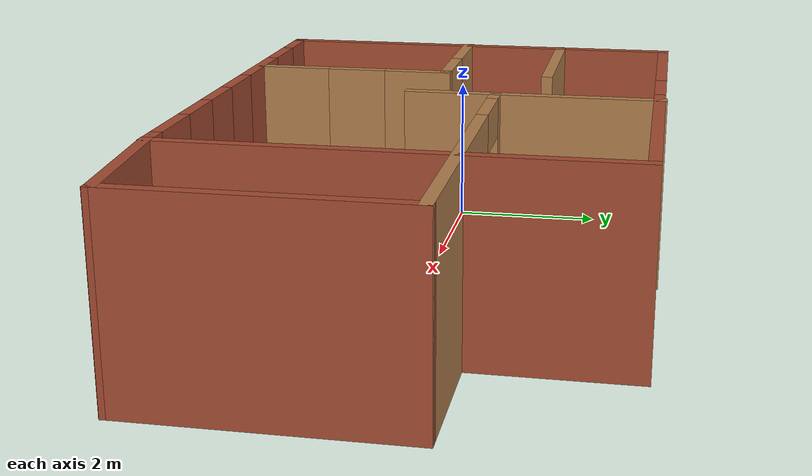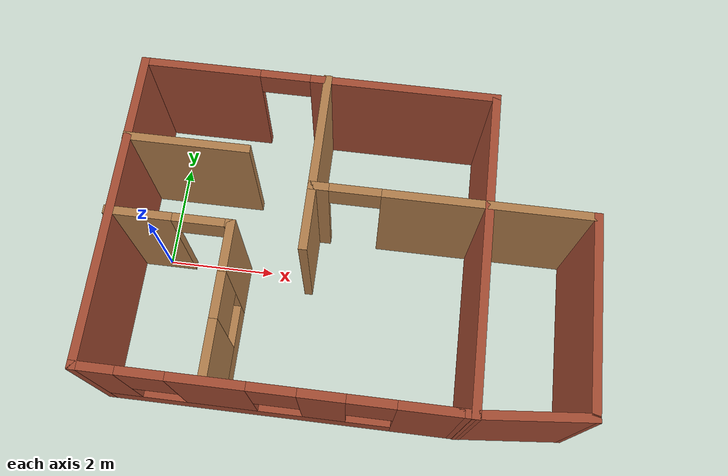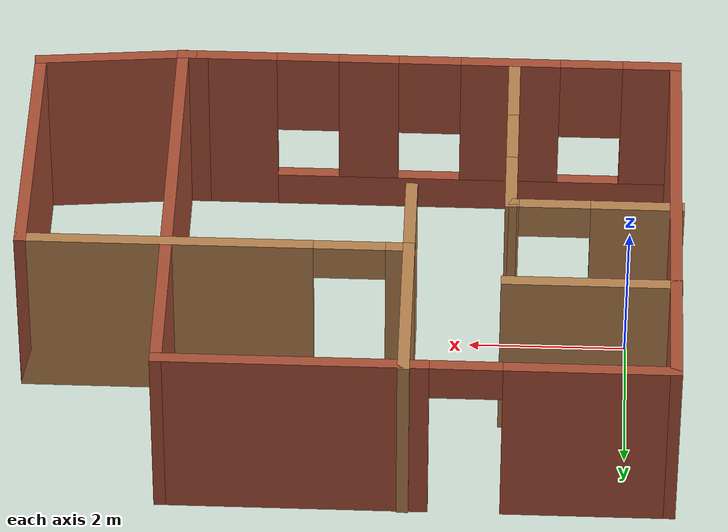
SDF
<?xml version='1.0'?>
<sdf version='1.7'>
  <model name='LAB'>
    <pose>3.51076 0.136542 0 0 -0 0</pose>
    <link name='Wall_0'>
      <pose>-1.02569 -2.80704 0 0 -0 3.14159</pose>
      <visual name='Wall_0_Visual_0'>
        <pose>-2.60515 0 1.25 0 -0 0</pose>
        <geometry>
          <box>
            <size>1.03971 0.15 2.5</size>
          </box>
        </geometry>
        <material>
          <script>
            <uri>file://media/materials/scripts/gazebo.material</uri>
            <name>Gazebo/Bricks</name>
          </script>
          <ambient>1 1 1 1</ambient>
        </material>
        <meta>
          <layer>0</layer>
        </meta>
      </visual>
      <collision name='Wall_0_Collision_0'>
        <geometry>
          <box>
            <size>1.03971 0.15 2.5</size>
          </box>
        </geometry>
        <pose>-2.60515 0 1.25 0 -0 0</pose>
      </collision>
      <visual name='Wall_0_Visual_1'>
        <pose>0.519853 0 0.25 0 -0 0</pose>
        <geometry>
          <box>
            <size>5.21029 0.15 0.5</size>
          </box>
        </geometry>
        <material>
          <script>
            <uri>file://media/materials/scripts/gazebo.material</uri>
            <name>Gazebo/Bricks</name>
          </script>
          <ambient>1 1 1 1</ambient>
        </material>
        <meta>
          <layer>0</layer>
        </meta>
      </visual>
      <collision name='Wall_0_Collision_1'>
        <geometry>
          <box>
            <size>5.21029 0.15 0.5</size>
          </box>
        </geometry>
        <pose>0.519853 0 0.25 0 -0 0</pose>
      </collision>
      <visual name='Wall_0_Visual_2'>
        <pose>-0.898854 0 1.5 0 -0 0</pose>
        <geometry>
          <box>
            <size>0.772881 0.15 2</size>
          </box>
        </geometry>
        <material>
          <script>
            <uri>file://media/materials/scripts/gazebo.material</uri>
            <name>Gazebo/Bricks</name>
          </script>
          <ambient>1 1 1 1</ambient>
        </material>
        <meta>
          <layer>0</layer>
        </meta>
      </visual>
      <collision name='Wall_0_Collision_2'>
        <geometry>
          <box>
            <size>0.772881 0.15 2</size>
          </box>
        </geometry>
        <pose>-0.898854 0 1.5 0 -0 0</pose>
      </collision>
      <visual name='Wall_0_Visual_3'>
        <pose>0.928464 0 1.5 0 -0 0</pose>
        <geometry>
          <box>
            <size>1.28175 0.15 2</size>
          </box>
        </geometry>
        <material>
          <script>
            <uri>file://media/materials/scripts/gazebo.material</uri>
            <name>Gazebo/Bricks</name>
          </script>
          <ambient>1 1 1 1</ambient>
        </material>
        <meta>
          <layer>0</layer>
        </meta>
      </visual>
      <collision name='Wall_0_Collision_3'>
        <geometry>
          <box>
            <size>1.28175 0.15 2</size>
          </box>
        </geometry>
        <pose>0.928464 0 1.5 0 -0 0</pose>
      </collision>
      <visual name='Wall_0_Visual_4'>
        <pose>2.74717 0 1.5 0 -0 0</pose>
        <geometry>
          <box>
            <size>0.755658 0.15 2</size>
          </box>
        </geometry>
        <material>
          <script>
            <uri>file://media/materials/scripts/gazebo.material</uri>
            <name>Gazebo/Bricks</name>
          </script>
          <ambient>1 1 1 1</ambient>
        </material>
        <meta>
          <layer>0</layer>
        </meta>
      </visual>
      <collision name='Wall_0_Collision_4'>
        <geometry>
          <box>
            <size>0.755658 0.15 2</size>
          </box>
        </geometry>
        <pose>2.74717 0 1.5 0 -0 0</pose>
      </collision>
      <visual name='Wall_0_Visual_5'>
        <pose>-1.68529 0 1.9 0 -0 0</pose>
        <geometry>
          <box>
            <size>0.8 0.15 1.2</size>
          </box>
        </geometry>
        <material>
          <script>
            <uri>file://media/materials/scripts/gazebo.material</uri>
            <name>Gazebo/Bricks</name>
          </script>
          <ambient>1 1 1 1</ambient>
        </material>
        <meta>
          <layer>0</layer>
        </meta>
      </visual>
      <collision name='Wall_0_Collision_5'>
        <geometry>
          <box>
            <size>0.8 0.15 1.2</size>
          </box>
        </geometry>
        <pose>-1.68529 0 1.9 0 -0 0</pose>
      </collision>
      <visual name='Wall_0_Visual_6'>
        <pose>-0.112413 0 1.9 0 -0 0</pose>
        <geometry>
          <box>
            <size>0.8 0.15 1.2</size>
          </box>
        </geometry>
        <material>
          <script>
            <uri>file://media/materials/scripts/gazebo.material</uri>
            <name>Gazebo/Bricks</name>
          </script>
          <ambient>1 1 1 1</ambient>
        </material>
        <meta>
          <layer>0</layer>
        </meta>
      </visual>
      <collision name='Wall_0_Collision_6'>
        <geometry>
          <box>
            <size>0.8 0.15 1.2</size>
          </box>
        </geometry>
        <pose>-0.112413 0 1.9 0 -0 0</pose>
      </collision>
      <visual name='Wall_0_Visual_7'>
        <pose>1.96934 0 1.9 0 -0 0</pose>
        <geometry>
          <box>
            <size>0.8 0.15 1.2</size>
          </box>
        </geometry>
        <material>
          <script>
            <uri>file://media/materials/scripts/gazebo.material</uri>
            <name>Gazebo/Bricks</name>
          </script>
          <ambient>1 1 1 1</ambient>
        </material>
        <meta>
          <layer>0</layer>
        </meta>
      </visual>
      <collision name='Wall_0_Collision_7'>
        <geometry>
          <box>
            <size>0.8 0.15 1.2</size>
          </box>
        </geometry>
        <pose>1.96934 0 1.9 0 -0 0</pose>
      </collision>
    </link>
    <link name='Wall_1'>
      <collision name='Wall_1_Collision'>
        <geometry>
          <box>
            <size>5.75 0.15 2.5</size>
          </box>
        </geometry>
        <pose>0 0 1.25 0 -0 0</pose>
      </collision>
      <visual name='Wall_1_Visual'>
        <pose>0 0 1.25 0 -0 0</pose>
        <geometry>
          <box>
            <size>5.75 0.15 2.5</size>
          </box>
        </geometry>
        <material>
          <script>
            <uri>file://media/materials/scripts/gazebo.material</uri>
            <name>Gazebo/Bricks</name>
          </script>
          <ambient>1 1 1 1</ambient>
        </material>
        <meta>
          <layer>0</layer>
        </meta>
      </visual>
      <pose>-4.07569 -0.007038 0 0 -0 1.5708</pose>
    </link>
    <link name='Wall_11'>
      <collision name='Wall_11_Collision'>
        <geometry>
          <box>
            <size>2.25 0.15 2.5</size>
          </box>
        </geometry>
        <pose>0 0 1.25 0 -0 0</pose>
      </collision>
      <visual name='Wall_11_Visual'>
        <pose>0 0 1.25 0 -0 0</pose>
        <geometry>
          <box>
            <size>2.25 0.15 2.5</size>
          </box>
        </geometry>
        <material>
          <script>
            <uri>file://media/materials/scripts/gazebo.material</uri>
            <name>Gazebo/Wood</name>
          </script>
          <ambient>1 1 1 1</ambient>
        </material>
        <meta>
          <layer>0</layer>
        </meta>
      </visual>
      <pose>-0.751362 1.7637 0 0 -0 -1.5708</pose>
    </link>
    <link name='Wall_12'>
      <pose>1.67364 0.7137 0 0 -0 0</pose>
      <visual name='Wall_12_Visual_0'>
        <pose>-2.31741 0 1.25 0 -0 0</pose>
        <geometry>
          <box>
            <size>0.36518 0.15 2.5</size>
          </box>
        </geometry>
        <material>
          <script>
            <uri>file://media/materials/scripts/gazebo.material</uri>
            <name>Gazebo/Wood</name>
          </script>
          <ambient>1 1 1 1</ambient>
        </material>
        <meta>
          <layer>0</layer>
        </meta>
      </visual>
      <collision name='Wall_12_Collision_0'>
        <geometry>
          <box>
            <size>0.36518 0.15 2.5</size>
          </box>
        </geometry>
        <pose>-2.31741 0 1.25 0 -0 0</pose>
      </collision>
      <visual name='Wall_12_Visual_1'>
        <pose>0.63259 0 1.25 0 -0 0</pose>
        <geometry>
          <box>
            <size>3.73482 0.15 2.5</size>
          </box>
        </geometry>
        <material>
          <script>
            <uri>file://media/materials/scripts/gazebo.material</uri>
            <name>Gazebo/Wood</name>
          </script>
          <ambient>1 1 1 1</ambient>
        </material>
        <meta>
          <layer>0</layer>
        </meta>
      </visual>
      <collision name='Wall_12_Collision_1'>
        <geometry>
          <box>
            <size>3.73482 0.15 2.5</size>
          </box>
        </geometry>
        <pose>0.63259 0 1.25 0 -0 0</pose>
      </collision>
      <visual name='Wall_12_Visual_2'>
        <pose>-1.68482 0 2.25 0 -0 0</pose>
        <geometry>
          <box>
            <size>0.9 0.15 0.5</size>
          </box>
        </geometry>
        <material>
          <script>
            <uri>file://media/materials/scripts/gazebo.material</uri>
            <name>Gazebo/Wood</name>
          </script>
          <ambient>1 1 1 1</ambient>
        </material>
        <meta>
          <layer>0</layer>
        </meta>
      </visual>
      <collision name='Wall_12_Collision_2'>
        <geometry>
          <box>
            <size>0.9 0.15 0.5</size>
          </box>
        </geometry>
        <pose>-1.68482 0 2.25 0 -0 0</pose>
      </collision>
    </link>
    <link name='Wall_13'>
      <collision name='Wall_13_Collision'>
        <geometry>
          <box>
            <size>3.5 0.15 2.5</size>
          </box>
        </geometry>
        <pose>0 0 1.25 0 -0 0</pose>
      </collision>
      <visual name='Wall_13_Visual'>
        <pose>0 0 1.25 0 -0 0</pose>
        <geometry>
          <box>
            <size>3.5 0.15 2.5</size>
          </box>
        </geometry>
        <material>
          <script>
            <uri>file://media/materials/scripts/gazebo.material</uri>
            <name>Gazebo/Bricks</name>
          </script>
          <ambient>1 1 1 1</ambient>
        </material>
        <meta>
          <layer>0</layer>
        </meta>
      </visual>
      <pose>4.09864 -0.9613 0 0 -0 -1.5708</pose>
    </link>
    <link name='Wall_14'>
      <collision name='Wall_14_Collision'>
        <geometry>
          <box>
            <size>1.9823 0.15 2.5</size>
          </box>
        </geometry>
        <pose>0 0 1.25 0 -0 0</pose>
      </collision>
      <visual name='Wall_14_Visual'>
        <pose>0 0 1.25 0 -0 0</pose>
        <geometry>
          <box>
            <size>1.9823 0.15 2.5</size>
          </box>
        </geometry>
        <material>
          <script>
            <uri>file://media/materials/scripts/gazebo.material</uri>
            <name>Gazebo/Bricks</name>
          </script>
          <ambient>1 1 1 1</ambient>
        </material>
        <meta>
          <layer>0</layer>
        </meta>
      </visual>
      <pose>3.18647 -2.72167 0 0 -0 -3.04827</pose>
    </link>
    <link name='Wall_16'>
      <collision name='Wall_16_Collision'>
        <geometry>
          <box>
            <size>1.25 0.15 2.5</size>
          </box>
        </geometry>
        <pose>0 0 1.25 0 -0 0</pose>
      </collision>
      <visual name='Wall_16_Visual'>
        <pose>0 0 1.25 0 -0 0</pose>
        <geometry>
          <box>
            <size>1.25 0.15 2.5</size>
          </box>
        </geometry>
        <material>
          <script>
            <uri>file://media/materials/scripts/gazebo.material</uri>
            <name>Gazebo/Wood</name>
          </script>
          <ambient>1 1 1 1</ambient>
        </material>
        <meta>
          <layer>0</layer>
        </meta>
      </visual>
      <pose>-0.751362 0.1637 0 0 -0 -1.5708</pose>
    </link>
    <link name='Wall_2'>
      <pose>-0.900689 2.79296 0 0 -0 0</pose>
      <visual name='Wall_2_Visual_0'>
        <pose>-2.15699 0 1.25 0 -0 0</pose>
        <geometry>
          <box>
            <size>2.18602 0.15 2.5</size>
          </box>
        </geometry>
        <material>
          <script>
            <uri>file://media/materials/scripts/gazebo.material</uri>
            <name>Gazebo/Bricks</name>
          </script>
          <ambient>1 1 1 1</ambient>
        </material>
        <meta>
          <layer>0</layer>
        </meta>
      </visual>
      <collision name='Wall_2_Collision_0'>
        <geometry>
          <box>
            <size>2.18602 0.15 2.5</size>
          </box>
        </geometry>
        <pose>-2.15699 0 1.25 0 -0 0</pose>
      </collision>
      <visual name='Wall_2_Visual_1'>
        <pose>1.54301 0 1.25 0 -0 0</pose>
        <geometry>
          <box>
            <size>3.41398 0.15 2.5</size>
          </box>
        </geometry>
        <material>
          <script>
            <uri>file://media/materials/scripts/gazebo.material</uri>
            <name>Gazebo/Bricks</name>
          </script>
          <ambient>1 1 1 1</ambient>
        </material>
        <meta>
          <layer>0</layer>
        </meta>
      </visual>
      <collision name='Wall_2_Collision_1'>
        <geometry>
          <box>
            <size>3.41398 0.15 2.5</size>
          </box>
        </geometry>
        <pose>1.54301 0 1.25 0 -0 0</pose>
      </collision>
      <visual name='Wall_2_Visual_2'>
        <pose>-0.613983 0 2.25 0 -0 0</pose>
        <geometry>
          <box>
            <size>0.9 0.15 0.5</size>
          </box>
        </geometry>
        <material>
          <script>
            <uri>file://media/materials/scripts/gazebo.material</uri>
            <name>Gazebo/Bricks</name>
          </script>
          <ambient>1 1 1 1</ambient>
        </material>
        <meta>
          <layer>0</layer>
        </meta>
      </visual>
      <collision name='Wall_2_Collision_2'>
        <geometry>
          <box>
            <size>0.9 0.15 0.5</size>
          </box>
        </geometry>
        <pose>-0.613983 0 2.25 0 -0 0</pose>
      </collision>
    </link>
    <link name='Wall_3'>
      <collision name='Wall_3_Collision'>
        <geometry>
          <box>
            <size>5.75 0.15 2.5</size>
          </box>
        </geometry>
        <pose>0 0 1.25 0 -0 0</pose>
      </collision>
      <visual name='Wall_3_Visual'>
        <pose>0 0 1.25 0 -0 0</pose>
        <geometry>
          <box>
            <size>5.75 0.15 2.5</size>
          </box>
        </geometry>
        <material>
          <script>
            <uri>file://media/materials/scripts/gazebo.material</uri>
            <name>Gazebo/Bricks</name>
          </script>
          <ambient>1 1 1 1</ambient>
        </material>
        <meta>
          <layer>0</layer>
        </meta>
      </visual>
      <pose>2.27431 -0.007038 0 0 -0 -1.5708</pose>
    </link>
    <link name='Wall_4'>
      <collision name='Wall_4_Collision'>
        <geometry>
          <box>
            <size>0.4 0.15 2.5</size>
          </box>
        </geometry>
        <pose>0 0 1.25 0 -0 0</pose>
      </collision>
      <visual name='Wall_4_Visual'>
        <pose>0 0 1.25 0 -0 0</pose>
        <geometry>
          <box>
            <size>0.4 0.15 2.5</size>
          </box>
        </geometry>
        <material>
          <script>
            <uri>file://media/materials/scripts/gazebo.material</uri>
            <name>Gazebo/Bricks</name>
          </script>
          <ambient>1 1 1 1</ambient>
        </material>
        <meta>
          <layer>0</layer>
        </meta>
      </visual>
      <pose>2.14931 -2.80704 0 0 -0 3.14159</pose>
    </link>
    <link name='Wall_6'>
      <pose>-3.0553 -0.147018 0 0 -0 0</pose>
      <visual name='Wall_6_Visual_0'>
        <pose>-0.537625 0 1.25 0 -0 0</pose>
        <geometry>
          <box>
            <size>1.17475 0.15 2.5</size>
          </box>
        </geometry>
        <material>
          <script>
            <uri>file://media/materials/scripts/gazebo.material</uri>
            <name>Gazebo/Wood</name>
          </script>
          <ambient>1 1 1 1</ambient>
        </material>
        <meta>
          <layer>0</layer>
        </meta>
      </visual>
      <collision name='Wall_6_Collision_0'>
        <geometry>
          <box>
            <size>1.17475 0.15 2.5</size>
          </box>
        </geometry>
        <pose>-0.537625 0 1.25 0 -0 0</pose>
      </collision>
      <visual name='Wall_6_Visual_1'>
        <pose>1.03737 0 1.25 0 -0 0</pose>
        <geometry>
          <box>
            <size>0.175249 0.15 2.5</size>
          </box>
        </geometry>
        <material>
          <script>
            <uri>file://media/materials/scripts/gazebo.material</uri>
            <name>Gazebo/Wood</name>
          </script>
          <ambient>1 1 1 1</ambient>
        </material>
        <meta>
          <layer>0</layer>
        </meta>
      </visual>
      <collision name='Wall_6_Collision_1'>
        <geometry>
          <box>
            <size>0.175249 0.15 2.5</size>
          </box>
        </geometry>
        <pose>1.03737 0 1.25 0 -0 0</pose>
      </collision>
      <visual name='Wall_6_Visual_2'>
        <pose>0.499751 0 2.25 0 -0 0</pose>
        <geometry>
          <box>
            <size>0.9 0.15 0.5</size>
          </box>
        </geometry>
        <material>
          <script>
            <uri>file://media/materials/scripts/gazebo.material</uri>
            <name>Gazebo/Wood</name>
          </script>
          <ambient>1 1 1 1</ambient>
        </material>
        <meta>
          <layer>0</layer>
        </meta>
      </visual>
      <collision name='Wall_6_Collision_2'>
        <geometry>
          <box>
            <size>0.9 0.15 0.5</size>
          </box>
        </geometry>
        <pose>0.499751 0 2.25 0 -0 0</pose>
      </collision>
    </link>
    <link name='Wall_7'>
      <pose>-2.0053 -1.44702 0 0 -0 -1.5708</pose>
      <visual name='Wall_7_Visual_0'>
        <pose>-0.912974 0 1.25 0 -0 0</pose>
        <geometry>
          <box>
            <size>0.924053 0.15 2.5</size>
          </box>
        </geometry>
        <material>
          <script>
            <uri>file://media/materials/scripts/gazebo.material</uri>
            <name>Gazebo/Wood</name>
          </script>
          <ambient>1 1 1 1</ambient>
        </material>
        <meta>
          <layer>0</layer>
        </meta>
      </visual>
      <collision name='Wall_7_Collision_0'>
        <geometry>
          <box>
            <size>0.924053 0.15 2.5</size>
          </box>
        </geometry>
        <pose>-0.912974 0 1.25 0 -0 0</pose>
      </collision>
      <visual name='Wall_7_Visual_1'>
        <pose>0.462026 0 0.25 0 -0 0</pose>
        <geometry>
          <box>
            <size>1.82595 0.15 0.5</size>
          </box>
        </geometry>
        <material>
          <script>
            <uri>file://media/materials/scripts/gazebo.material</uri>
            <name>Gazebo/Wood</name>
          </script>
          <ambient>1 1 1 1</ambient>
        </material>
        <meta>
          <layer>0</layer>
        </meta>
      </visual>
      <collision name='Wall_7_Collision_1'>
        <geometry>
          <box>
            <size>1.82595 0.15 0.5</size>
          </box>
        </geometry>
        <pose>0.462026 0 0.25 0 -0 0</pose>
      </collision>
      <visual name='Wall_7_Visual_2'>
        <pose>0.862026 0 1.5 0 -0 0</pose>
        <geometry>
          <box>
            <size>1.02595 0.15 2</size>
          </box>
        </geometry>
        <material>
          <script>
            <uri>file://media/materials/scripts/gazebo.material</uri>
            <name>Gazebo/Wood</name>
          </script>
          <ambient>1 1 1 1</ambient>
        </material>
        <meta>
          <layer>0</layer>
        </meta>
      </visual>
      <collision name='Wall_7_Collision_2'>
        <geometry>
          <box>
            <size>1.02595 0.15 2</size>
          </box>
        </geometry>
        <pose>0.862026 0 1.5 0 -0 0</pose>
      </collision>
      <visual name='Wall_7_Visual_3'>
        <pose>-0.050947 0 1.9 0 -0 0</pose>
        <geometry>
          <box>
            <size>0.8 0.15 1.2</size>
          </box>
        </geometry>
        <material>
          <script>
            <uri>file://media/materials/scripts/gazebo.material</uri>
            <name>Gazebo/Wood</name>
          </script>
          <ambient>1 1 1 1</ambient>
        </material>
        <meta>
          <layer>0</layer>
        </meta>
      </visual>
      <collision name='Wall_7_Collision_3'>
        <geometry>
          <box>
            <size>0.8 0.15 1.2</size>
          </box>
        </geometry>
        <pose>-0.050947 0 1.9 0 -0 0</pose>
      </collision>
    </link>
    <link name='Wall_9'>
      <collision name='Wall_9_Collision'>
        <geometry>
          <box>
            <size>2.25 0.15 2.5</size>
          </box>
        </geometry>
        <pose>0 0 1.25 0 -0 0</pose>
      </collision>
      <visual name='Wall_9_Visual'>
        <pose>0 0 1.25 0 -0 0</pose>
        <geometry>
          <box>
            <size>2.25 0.15 2.5</size>
          </box>
        </geometry>
        <material>
          <script>
            <uri>file://media/materials/scripts/gazebo.material</uri>
            <name>Gazebo/Wood</name>
          </script>
          <ambient>1 1 1 1</ambient>
        </material>
        <meta>
          <layer>0</layer>
        </meta>
      </visual>
      <pose>-3.03217 1.26395 0 0 -0 0</pose>
    </link>
    <static>1</static>
  </model>
</sdf>
